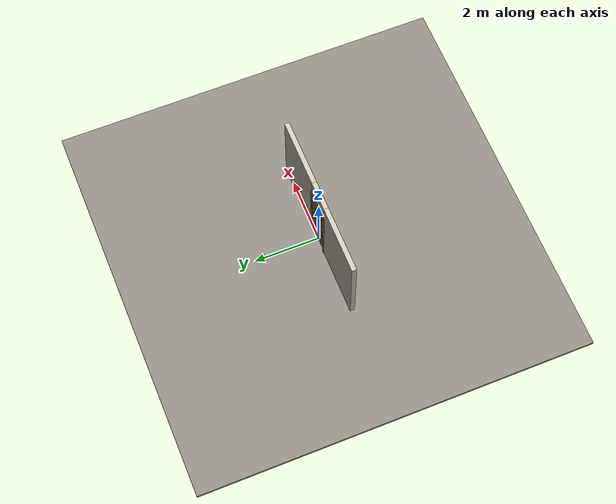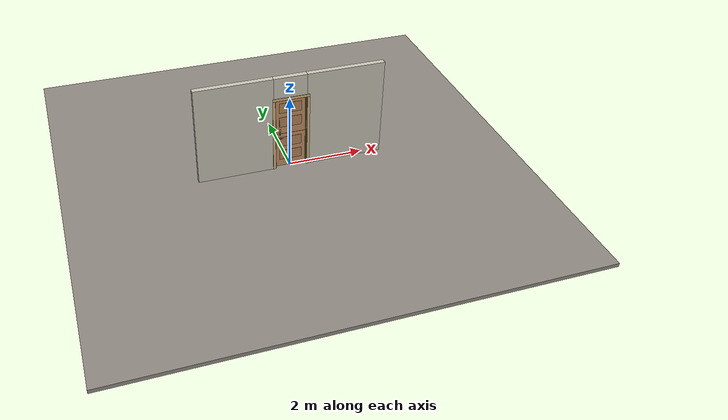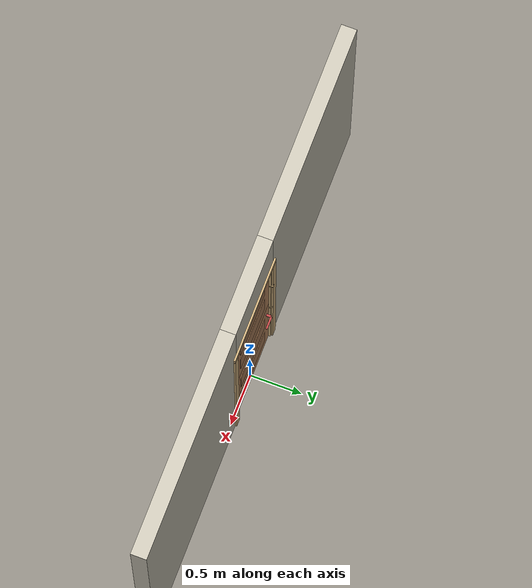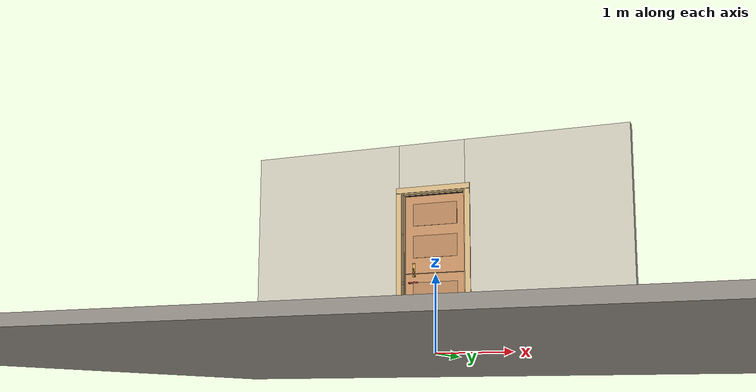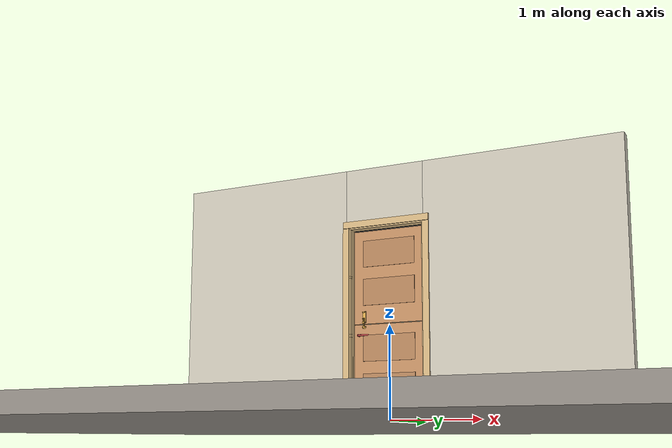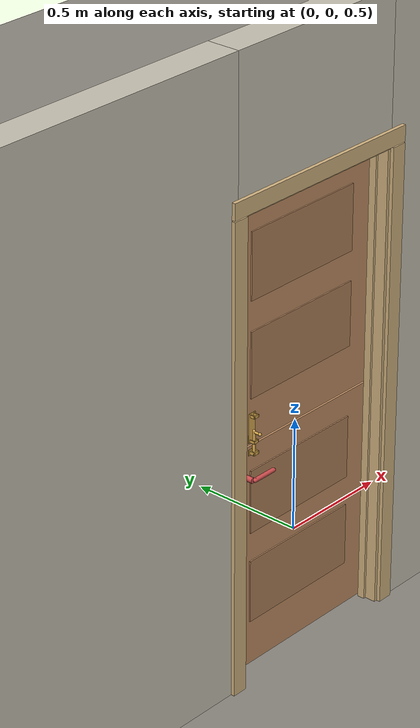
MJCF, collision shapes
<?xml version="1.0" ?>
<mujoco model="db0700_dutch_full">
  <compiler angle="radian" meshdir="../../hardware" texturedir="../../textures" autolimits="true" inertiafromgeom="false"/>
  <option timestep="0.002" integrator="implicitfast" cone="elliptic" impratio="10" noslip_iterations="3">
    <flag multiccd="enable"/>
  </option>
  <size memory="16M"/>
  <default>
    <geom condim="4" solref="0.005 1" solimp="0.95 0.99 0.001"/>
    <joint solreflimit="0.005 1" solimplimit="0.95 0.99 0.001"/>
    <tendon solreflimit="0.005 1"/>
    <equality solref="0.002 1"/>
  </default>
  <visual>
    <headlight ambient="0.4 0.4 0.4" diffuse="0.7 0.7 0.7" specular="0.2 0.2 0.2"/>
    <quality shadowsize="4096"/>
    <map znear="0.01" zfar="60"/>
  </visual>
  <asset>
    <mesh name="hinge_e22b26c0c1" file="hinge_e22b26c0c1.obj"/>
    <mesh name="hinge_jamb_e1d088f8dc" file="hinge_jamb_e1d088f8dc.obj"/>
    <mesh name="lever_9f02b544cf" file="lever_9f02b544cf.obj"/>
    <material name="mat_floor" rgba="0.55 0.53 0.5 1" specular="0.2" shininess="0.15" reflectance="0"/>
    <material name="mat_wall" rgba="0.78 0.76 0.7 1" specular="0.2" shininess="0.1" reflectance="0"/>
    <material name="mat_leaf_lower" rgba="0.75 0.55 0.38 1" specular="0.2" shininess="0.45" reflectance="0"/>
    <material name="mat_leaf_lower_panel" rgba="0.69 0.506 0.35 1" specular="0.2" shininess="0.45" reflectance="0"/>
    <material name="mat_leaf_upper" rgba="0.75 0.55 0.38 1" specular="0.2" shininess="0.45" reflectance="0"/>
    <material name="mat_leaf_upper_panel" rgba="0.69 0.506 0.35 1" specular="0.2" shininess="0.45" reflectance="0"/>
    <material name="mat_op_nickel_satin" rgba="0.72 0.7 0.66 1" specular="0.8" shininess="0.65" reflectance="0.4"/>
    <material name="mat_trim" rgba="0.85 0.66 0.3 1" specular="0.8" shininess="0.75" reflectance="0.4"/>
    <material name="mat_bolt" rgba="0.85 0.66 0.3 1" specular="0.8" shininess="0.75" reflectance="0.4"/>
    <material name="mat_joinbolt" rgba="0.85 0.66 0.3 1" specular="0.8" shininess="0.75" reflectance="0.4"/>
    <material name="mat_frame" rgba="0.82 0.7 0.5 1" specular="0.2" shininess="0.45" reflectance="0"/>
    <material name="mat_seal" rgba="0.1 0.1 0.1 1" specular="0.2" shininess="0.1" reflectance="0"/>
    <material name="mat_hinge" rgba="0.65 0.66 0.68 1" specular="0.74" shininess="0.5" reflectance="0.36"/>
    <texture name="skybox" type="skybox" builtin="gradient" rgb1="0.6 0.7 0.85" rgb2="0.9 0.92 0.95" width="256" height="256"/>
  </asset>
  <worldbody>
    <light name="sun" pos="1.5 -2.5 4" dir="-0.3 0.5 -0.8" directional="true" diffuse="0.8 0.8 0.8" specular="0.3 0.3 0.3" castshadow="true"/>
    <light name="fill" pos="-1.5 2.5 3" dir="0.3 -0.5 -0.7" directional="true" diffuse="0.35 0.35 0.4" castshadow="false"/>
    <camera name="robot_view" pos="0 -2.572687 1.734312" xyaxes="1 0 0 0 0.26963 0.962964" fovy="52"/>
    <camera name="far_view" pos="0 2.511687 1.734312" xyaxes="-1 0 0 0 -0.26963 0.962964" fovy="52"/>
    <camera name="iso" pos="-1.932062 -2.165938 2.141063" xyaxes="0.741536 -0.670913 0 0.242917 0.268487 0.932151" fovy="46"/>
    <camera name="detail_handle" pos="-0.0555 -0.877 1.176" xyaxes="0.97561 0.219512 0 -0.070934 0.315262 0.94635" fovy="38"/>
    <geom name="floor" type="box" size="6 6 0.05" pos="0 0 -0.05" material="mat_floor" group="0" contype="1" conaffinity="1" friction="0.8 0.005 0.0001" density="2400"/>
    <geom name="wall_left" type="box" size="1.02025 0.0725 1.35" pos="-1.47975 -0.0305 1.35" material="mat_wall" group="0" contype="1" conaffinity="1" friction="0.6 0.005 0.0001" density="800"/>
    <geom name="wall_right" type="box" size="1.03525 0.0725 1.35" pos="1.46475 -0.0305 1.35" material="mat_wall" group="0" contype="1" conaffinity="1" friction="0.6 0.005 0.0001" density="800"/>
    <geom name="wall_header" type="box" size="0.4445 0.0725 0.303" pos="-0.015 -0.0305 2.397" material="mat_wall" group="0" contype="1" conaffinity="1" friction="0.6 0.005 0.0001" density="800"/>
    <geom name="jamb_hinge" type="box" size="0.0095 0.0725 1.0225" pos="0.42 -0.0305 1.0225" material="mat_frame" group="0" contype="1" conaffinity="1" friction="0.6 0.005 0.0001" density="400"/>
    <geom name="strike_896_wall_n" type="box" size="0.0245 0.047575 0.0167" pos="-0.435 -0.055425 0.896" material="mat_frame" group="0" contype="1" conaffinity="1" friction="0.6 0.005 0.0001" density="400"/>
    <geom name="strike_896_wall_p" type="box" size="0.0245 0.008 0.0167" pos="-0.435 0.01585 0.896" material="mat_frame" group="0" contype="1" conaffinity="1" friction="0.6 0.005 0.0001" density="400"/>
    <geom name="strike_896_ramp" type="box" size="0.0245 0.020268 0.0167" pos="-0.440408 0.034645 0.896" quat="0.985179 0 0 0.171531" material="mat_frame" group="0" contype="1" conaffinity="1" friction="0.12 0.005 0.0001" density="400"/>
    <geom name="strike_896_back" type="box" size="0.01615 0.00785 0.0167" pos="-0.44335 0 0.896" material="mat_frame" group="0" contype="1" conaffinity="1" friction="0.6 0.005 0.0001" density="400"/>
    <geom name="strike_1524_wall_n" type="box" size="0.0245 0.04775 0.01" pos="-0.435 -0.05525 1.524" material="mat_frame" group="0" contype="1" conaffinity="1" friction="0.6 0.005 0.0001" density="400"/>
    <geom name="strike_1524_wall_p" type="box" size="0.0245 0.008 0.01" pos="-0.435 0.0155 1.524" material="mat_frame" group="0" contype="1" conaffinity="1" friction="0.6 0.005 0.0001" density="400"/>
    <geom name="strike_1524_ramp" type="box" size="0.0245 0.019412 0.01" pos="-0.437296 0.039595 1.524" quat="0.997916 0 0 0.064529" material="mat_frame" group="0" contype="1" conaffinity="1" friction="0.12 0.005 0.0001" density="400"/>
    <geom name="strike_1524_ramp_n" type="box" size="0.0245 0.019412 0.01" pos="-0.437296 -0.027595 1.524" quat="0.997916 0 0 -0.064529" material="mat_frame" group="0" contype="1" conaffinity="1" friction="0.12 0.005 0.0001" density="400"/>
    <geom name="strike_1524_back" type="box" size="0.0205 0.0075 0.01" pos="-0.439 0 1.524" material="mat_frame" group="0" contype="1" conaffinity="1" friction="0.6 0.005 0.0001" density="400"/>
    <geom name="jamb_strike_0" type="box" size="0.0245 0.0725 0.43965" pos="-0.435 -0.0305 0.43965" material="mat_frame" group="0" contype="1" conaffinity="1" friction="0.6 0.005 0.0001" density="400"/>
    <geom name="jamb_strike_1" type="box" size="0.0245 0.0725 0.30065" pos="-0.435 -0.0305 1.21335" material="mat_frame" group="0" contype="1" conaffinity="1" friction="0.6 0.005 0.0001" density="400"/>
    <geom name="jamb_strike_2" type="box" size="0.0245 0.0725 0.2555" pos="-0.435 -0.0305 1.7895" material="mat_frame" group="0" contype="1" conaffinity="1" friction="0.6 0.005 0.0001" density="400"/>
    <geom name="jamb_head" type="box" size="0.4445 0.0725 0.0095" pos="-0.015 -0.0305 2.0545" material="mat_frame" group="0" contype="1" conaffinity="1" friction="0.6 0.005 0.0001" density="400"/>
    <geom name="head_stud" type="box" size="0.4445 0.0725 0.015" pos="-0.015 -0.0305 2.079" material="mat_wall" group="0" contype="1" conaffinity="1" friction="0.6 0.005 0.0001" density="500"/>
    <geom name="stop_hinge" type="box" size="0.0055 0.016 1.0225" pos="0.405 -0.0385 1.0225" material="mat_frame" group="0" contype="1" conaffinity="1" friction="0.6 0.005 0.0001" density="400"/>
    <geom name="stop_strike" type="box" size="0.0055 0.016 1.0225" pos="-0.405 -0.0385 1.0225" material="mat_frame" group="0" contype="1" conaffinity="1" friction="0.6 0.005 0.0001" density="400"/>
    <geom name="stop_head" type="box" size="0.4105 0.016 0.0055" pos="0 -0.0385 2.0395" material="mat_frame" group="0" contype="1" conaffinity="1" friction="0.6 0.005 0.0001" density="400"/>
    <geom name="seal_hinge" type="box" size="0.004 0.003 1.0225" pos="0.4075 -0.025 1.0225" material="mat_seal" group="1" contype="0" conaffinity="0" density="1100"/>
    <geom name="seal_strike" type="box" size="0.004 0.003 1.0225" pos="-0.4075 -0.025 1.0225" material="mat_seal" group="1" contype="0" conaffinity="0" density="1100"/>
    <geom name="seal_head" type="box" size="0.3905 0.003 0.008" pos="0 -0.025 2.033" material="mat_seal" group="1" contype="0" conaffinity="0" density="1100"/>
    <geom name="casing_l_n" type="box" size="0.035 0.008 1.032" pos="-0.4595 -0.111 1.0225" material="mat_frame" group="2" contype="0" conaffinity="0" density="400"/>
    <geom name="casing_r_n" type="box" size="0.035 0.008 1.032" pos="0.4595 -0.111 1.0225" material="mat_frame" group="2" contype="0" conaffinity="0" density="400"/>
    <geom name="casing_h_n" type="box" size="0.4945 0.008 0.035" pos="0 -0.111 2.094" material="mat_frame" group="2" contype="0" conaffinity="0" density="400"/>
    <geom name="casing_l_p" type="box" size="0.035 0.008 1.032" pos="-0.4595 0.05 1.0225" material="mat_frame" group="2" contype="0" conaffinity="0" density="400"/>
    <geom name="casing_r_p" type="box" size="0.035 0.008 1.032" pos="0.4595 0.05 1.0225" material="mat_frame" group="2" contype="0" conaffinity="0" density="400"/>
    <geom name="casing_h_p" type="box" size="0.4945 0.008 0.035" pos="0 0.05 2.094" material="mat_frame" group="2" contype="0" conaffinity="0" density="400"/>
    <geom name="hinge_0_jamb" type="mesh" mesh="hinge_jamb_e1d088f8dc" pos="0.4105 0.029 0.262" quat="0 0 0 1" material="mat_hinge" group="1" contype="0" conaffinity="0" density="7850"/>
    <geom name="hinge_1_jamb" type="mesh" mesh="hinge_jamb_e1d088f8dc" pos="0.4105 0.029 0.452" quat="0 0 0 1" material="mat_hinge" group="1" contype="0" conaffinity="0" density="7850"/>
    <geom name="hinge_2_jamb" type="mesh" mesh="hinge_jamb_e1d088f8dc" pos="0.4105 0.029 0.642" quat="0 0 0 1" material="mat_hinge" group="1" contype="0" conaffinity="0" density="7850"/>
    <geom name="hinge_3_jamb" type="mesh" mesh="hinge_jamb_e1d088f8dc" pos="0.4105 0.029 0.832" quat="0 0 0 1" material="mat_hinge" group="1" contype="0" conaffinity="0" density="7850"/>
    <geom name="hinge_0_jamb_2" type="mesh" mesh="hinge_jamb_e1d088f8dc" pos="0.4105 0.029 1.27" quat="0 0 0 1" material="mat_hinge" group="1" contype="0" conaffinity="0" density="7850"/>
    <geom name="hinge_1_jamb_2" type="mesh" mesh="hinge_jamb_e1d088f8dc" pos="0.4105 0.029 1.464" quat="0 0 0 1" material="mat_hinge" group="1" contype="0" conaffinity="0" density="7850"/>
    <geom name="hinge_2_jamb_2" type="mesh" mesh="hinge_jamb_e1d088f8dc" pos="0.4105 0.029 1.658" quat="0 0 0 1" material="mat_hinge" group="1" contype="0" conaffinity="0" density="7850"/>
    <geom name="hinge_3_jamb_2" type="mesh" mesh="hinge_jamb_e1d088f8dc" pos="0.4105 0.029 1.852" quat="0 0 0 1" material="mat_hinge" group="1" contype="0" conaffinity="0" density="7850"/>
    <site name="approach_point" pos="0 -1.5 0" quat="1 0 0 0" size="0.05" rgba="0.2 0.9 0.2 0.5" group="4"/>
    <site name="goal_point" pos="0 1.5 0" quat="1 0 0 0" size="0.05" rgba="0.2 0.9 0.2 0.5" group="4"/>
    <site name="door_plane_center" pos="0 0 1.0225" quat="1 0 0 0" size="0.02" rgba="0.2 0.9 0.2 0.5" group="4"/>
    <body name="leaf_lower" pos="0.4105 0 0">
      <inertial pos="-0.063499 0.014124 0.574667" mass="18.911392" quat="-0.354711 0.319121 0.629431 0.613317" diaginertia="0.5255937 1.285840631 1.801865146"/>
      <joint name="leaf_lower_hinge" type="hinge" axis="0 0 -1" pos="-0.003 0.029 0" limited="true" range="0 1.745329" solreflimit="0.02 1" damping="0.210326" frictionloss="0.704303" armature="0.02"/>
      <geom name="leaf_lower_slab" type="box" size="0.4065 0.022 0.5" pos="-0.4095 0 0.512" material="mat_leaf_lower" group="0" contype="1" conaffinity="1" friction="0.35 0.005 0.0001" density="1"/>
      <geom name="leaf_lower_panel_0_n" type="box" size="0.2965 0.003 0.14" pos="-0.4095 -0.025 0.352" material="mat_leaf_lower_panel" group="1" contype="0" conaffinity="0" density="1"/>
      <geom name="leaf_lower_panel_0_p" type="box" size="0.2965 0.003 0.14" pos="-0.4095 0.025 0.352" material="mat_leaf_lower_panel" group="1" contype="0" conaffinity="0" density="1"/>
      <geom name="leaf_lower_panel_1_n" type="box" size="0.2965 0.003 0.14" pos="-0.4095 -0.025 0.762" material="mat_leaf_lower_panel" group="1" contype="0" conaffinity="0" density="1"/>
      <geom name="leaf_lower_panel_1_p" type="box" size="0.2965 0.003 0.14" pos="-0.4095 0.025 0.762" material="mat_leaf_lower_panel" group="1" contype="0" conaffinity="0" density="1"/>
      <geom name="lower_latch_bolt_faceplate" type="box" size="0.0006 0.01235 0.0267" pos="-0.8154 0 0.896" material="mat_bolt" group="1" contype="0" conaffinity="0" density="8500"/>
      <geom name="join_keeper_leg_n" type="box" size="0.007 0.0025 0.013" pos="-0.7075 -0.035 0.986" quat="-0.5 -0.5 -0.5 0.5" material="mat_joinbolt" group="0" contype="1" conaffinity="1" friction="0.6 0.005 0.0001" density="7800"/>
      <geom name="join_keeper_leg_p" type="box" size="0.007 0.0025 0.013" pos="-0.6845 -0.035 0.986" quat="-0.5 -0.5 -0.5 0.5" material="mat_joinbolt" group="0" contype="1" conaffinity="1" friction="0.6 0.005 0.0001" density="7800"/>
      <geom name="join_keeper_bridge" type="box" size="0.007 0.014 0.0025" pos="-0.696 -0.0455 0.986" quat="-0.5 -0.5 -0.5 0.5" material="mat_joinbolt" group="0" contype="1" conaffinity="1" friction="0.6 0.005 0.0001" density="7800"/>
      <geom name="join_keeper_base" type="box" size="0.013 0.02 0.001" pos="-0.696 -0.023 0.986" quat="-0.5 -0.5 -0.5 0.5" material="mat_joinbolt" group="1" contype="0" conaffinity="0" density="7800"/>
      <geom name="hinge_0" type="mesh" mesh="hinge_e22b26c0c1" pos="0 0.029 0.262" quat="0 0 0 1" material="mat_hinge" group="1" contype="0" conaffinity="0" density="7850"/>
      <geom name="hinge_1" type="mesh" mesh="hinge_e22b26c0c1" pos="0 0.029 0.452" quat="0 0 0 1" material="mat_hinge" group="1" contype="0" conaffinity="0" density="7850"/>
      <geom name="hinge_2" type="mesh" mesh="hinge_e22b26c0c1" pos="0 0.029 0.642" quat="0 0 0 1" material="mat_hinge" group="1" contype="0" conaffinity="0" density="7850"/>
      <geom name="hinge_3" type="mesh" mesh="hinge_e22b26c0c1" pos="0 0.029 0.832" quat="0 0 0 1" material="mat_hinge" group="1" contype="0" conaffinity="0" density="7850"/>
      <body name="lower_handle" pos="-0.746 0 0.896">
        <inertial pos="0.028544 0 0" mass="0.978187" quat="0 0.707107 0.707107 0" diaginertia="0.001772047 0.003604455 0.005198299"/>
        <joint name="lower_handle_hinge" type="hinge" axis="0 1 0" limited="true" range="0 0.96" damping="0.245624" frictionloss="0.048" stiffness="1.2" springref="-0.458333" armature="0.01"/>
        <geom name="lower_handle_spindle" type="cylinder" size="0.006 0.03" pos="0 0 0" quat="0.707107 -0.707107 0 0" material="mat_op_nickel_satin" group="1" contype="0" conaffinity="0" density="7850"/>
        <geom name="lower_handle_lever_n" type="mesh" mesh="lever_9f02b544cf" pos="0 -0.022 0" quat="0 0 -0.707107 0.707107" material="mat_op_nickel_satin" group="1" contype="0" conaffinity="0" density="3000"/>
        <geom name="lower_handle_lever_col_n" type="capsule" size="0.0095 0.053" pos="0.0625 -0.077 0" quat="0.707107 0 0.707107 0" material="mat_op_nickel_satin" group="3" contype="1" conaffinity="1" rgba="0.8 0.3 0.3 0.25" friction="0.7 0.01 0.0001" density="3000"/>
        <geom name="lower_handle_hub_col_n" type="cylinder" size="0.012 0.022" pos="0 -0.052 0" quat="0.707107 -0.707107 0 0" material="mat_op_nickel_satin" group="3" contype="1" conaffinity="1" rgba="0.8 0.3 0.3 0.25" friction="0.6 0.005 0.0001" density="3000"/>
        <geom name="lower_handle_lever_p" type="mesh" mesh="lever_9f02b544cf" pos="0 0.022 0" quat="0 0 0.707107 0.707107" material="mat_op_nickel_satin" group="1" contype="0" conaffinity="0" density="3000"/>
        <geom name="lower_handle_lever_col_p" type="capsule" size="0.0095 0.053" pos="0.0625 0.077 0" quat="0.707107 0 0.707107 0" material="mat_op_nickel_satin" group="3" contype="1" conaffinity="1" rgba="0.8 0.3 0.3 0.25" friction="0.7 0.01 0.0001" density="3000"/>
        <geom name="lower_handle_hub_col_p" type="cylinder" size="0.012 0.022" pos="0 0.052 0" quat="0.707107 -0.707107 0 0" material="mat_op_nickel_satin" group="3" contype="1" conaffinity="1" rgba="0.8 0.3 0.3 0.25" friction="0.6 0.005 0.0001" density="3000"/>
        <site name="lower_handle_grip_n" pos="0.1 -0.077 0" quat="1 0 0 0" size="0.012" rgba="0.2 0.9 0.2 0.5" group="4"/>
        <site name="lower_handle_grip_p" pos="0.1 0.077 0" quat="1 0 0 0" size="0.012" rgba="0.2 0.9 0.2 0.5" group="4"/>
      </body>
      <body name="lower_latch_bolt" pos="-0.816 0 0.896">
        <inertial pos="0.00865 0 0" mass="0.041419" quat="0.92388 0.382683 0 0" diaginertia="0.000000798 0.000005598 0.000005598"/>
        <joint name="lower_latch_bolt_slide" type="slide" axis="1 0 0" limited="true" range="0 0.0127" damping="2" frictionloss="0.3" stiffness="300" springref="-0.008333" armature="0.1"/>
        <geom name="lower_latch_bolt_capsule" type="capsule" size="0.00635 0.015" pos="0.00865 0 0" quat="0.707107 0 -0.707107 0" material="mat_bolt" group="0" contype="1" conaffinity="1" friction="0.2 0.005 0.0001" density="8500"/>
      </body>
    </body>
    <body name="leaf_upper" pos="0.4105 0 0">
      <inertial pos="-0.101473 0.01165 1.505228" mass="19.159617" quat="0.305768 0.267254 0.652486 -0.639799" diaginertia="0.571726064 1.841039317 2.40370815"/>
      <joint name="leaf_upper_hinge" type="hinge" axis="0 0 -1" pos="-0.003 0.029 0" limited="true" range="0 1.745329" solreflimit="0.02 1" damping="0.210326" frictionloss="0.704303" armature="0.02"/>
      <geom name="leaf_upper_slab" type="box" size="0.4065 0.022 0.506" pos="-0.4095 0 1.526" material="mat_leaf_upper" group="0" contype="1" conaffinity="1" friction="0.35 0.005 0.0001" density="1"/>
      <geom name="leaf_upper_panel_0_n" type="box" size="0.2965 0.003 0.143" pos="-0.4095 -0.025 1.363" material="mat_leaf_upper_panel" group="1" contype="0" conaffinity="0" density="1"/>
      <geom name="leaf_upper_panel_0_p" type="box" size="0.2965 0.003 0.143" pos="-0.4095 0.025 1.363" material="mat_leaf_upper_panel" group="1" contype="0" conaffinity="0" density="1"/>
      <geom name="leaf_upper_panel_1_n" type="box" size="0.2965 0.003 0.143" pos="-0.4095 -0.025 1.779" material="mat_leaf_upper_panel" group="1" contype="0" conaffinity="0" density="1"/>
      <geom name="leaf_upper_panel_1_p" type="box" size="0.2965 0.003 0.143" pos="-0.4095 0.025 1.779" material="mat_leaf_upper_panel" group="1" contype="0" conaffinity="0" density="1"/>
      <geom name="upper_catch_faceplate" type="box" size="0.0006 0.012 0.02" pos="-0.8154 0 1.524" material="mat_bolt" group="1" contype="0" conaffinity="0" density="8500"/>
      <geom name="join_bolt_plate" type="box" size="0.064 0.019 0.001" pos="-0.696 -0.023 1.092" quat="-0.5 -0.5 -0.5 0.5" material="mat_joinbolt" group="1" contype="0" conaffinity="0" density="7800"/>
      <geom name="join_bolt_guide_0_leg_n" type="box" size="0.006 0.002 0.0125" pos="-0.707 -0.0345 1.036" quat="-0.5 -0.5 -0.5 0.5" material="mat_joinbolt" group="1" contype="0" conaffinity="0" density="7800"/>
      <geom name="join_bolt_guide_0_leg_p" type="box" size="0.006 0.002 0.0125" pos="-0.685 -0.0345 1.036" quat="-0.5 -0.5 -0.5 0.5" material="mat_joinbolt" group="1" contype="0" conaffinity="0" density="7800"/>
      <geom name="join_bolt_guide_0_bridge" type="box" size="0.006 0.013 0.002" pos="-0.696 -0.045 1.036" quat="-0.5 -0.5 -0.5 0.5" material="mat_joinbolt" group="1" contype="0" conaffinity="0" density="7800"/>
      <geom name="join_bolt_guide_1_leg_n" type="box" size="0.006 0.002 0.0125" pos="-0.707 -0.0345 1.146" quat="-0.5 -0.5 -0.5 0.5" material="mat_joinbolt" group="1" contype="0" conaffinity="0" density="7800"/>
      <geom name="join_bolt_guide_1_leg_p" type="box" size="0.006 0.002 0.0125" pos="-0.685 -0.0345 1.146" quat="-0.5 -0.5 -0.5 0.5" material="mat_joinbolt" group="1" contype="0" conaffinity="0" density="7800"/>
      <geom name="join_bolt_guide_1_bridge" type="box" size="0.006 0.013 0.002" pos="-0.696 -0.045 1.146" quat="-0.5 -0.5 -0.5 0.5" material="mat_joinbolt" group="1" contype="0" conaffinity="0" density="7800"/>
      <geom name="hinge_0_2" type="mesh" mesh="hinge_e22b26c0c1" pos="0 0.029 1.27" quat="0 0 0 1" material="mat_hinge" group="1" contype="0" conaffinity="0" density="7850"/>
      <geom name="hinge_1_2" type="mesh" mesh="hinge_e22b26c0c1" pos="0 0.029 1.464" quat="0 0 0 1" material="mat_hinge" group="1" contype="0" conaffinity="0" density="7850"/>
      <geom name="hinge_2_2" type="mesh" mesh="hinge_e22b26c0c1" pos="0 0.029 1.658" quat="0 0 0 1" material="mat_hinge" group="1" contype="0" conaffinity="0" density="7850"/>
      <geom name="hinge_3_2" type="mesh" mesh="hinge_e22b26c0c1" pos="0 0.029 1.852" quat="0 0 0 1" material="mat_hinge" group="1" contype="0" conaffinity="0" density="7850"/>
      <body name="upper_catch" pos="-0.816 0 1.524">
        <inertial pos="0.013 0 0" mass="0.02884" quat="0 0 -0.707107 0.707107" diaginertia="0.000000491 0.000002465 0.000002465"/>
        <joint name="upper_catch_slide" type="slide" axis="1 0 0" limited="true" range="0 0.004" damping="2" frictionloss="0.3" stiffness="4000" springref="-0.00375" armature="0.1"/>
        <geom name="upper_catch_capsule" type="capsule" size="0.006 0.011" pos="0.013 0 0" quat="0.707107 0 -0.707107 0" material="mat_bolt" group="0" contype="1" conaffinity="1" friction="0.2 0.005 0.0001" density="8500"/>
      </body>
      <body name="join_bolt" pos="-0.696 -0.034 1.02">
        <inertial pos="0 -0.00492 0.025264" mass="0.111784" quat="-0.065075 0.704106 -0.065075 0.704106" diaginertia="0.000009833 0.000100603 0.000108548"/>
        <joint name="join_bolt_slide" type="slide" axis="0 0 1" limited="true" range="0 0.05" damping="1" frictionloss="1" armature="0.1"/>
        <geom name="join_bolt_rod" type="capsule" size="0.006 0.044" pos="0 0 0.016" quat="0 1 0 0" material="mat_joinbolt" group="0" contype="1" conaffinity="1" friction="0.6 0.005 0.0001" density="7850"/>
        <geom name="join_bolt_knob" type="capsule" size="0.005 0.01" pos="0 -0.015 0.055" quat="0.707107 0.707107 0 0" material="mat_joinbolt" group="0" contype="1" conaffinity="1" friction="0.6 0.005 0.0001" density="7850"/>
        <geom name="join_bolt_knob_end" type="sphere" size="0.00675" pos="0 -0.03 0.055" material="mat_joinbolt" group="1" contype="0" conaffinity="0" density="7850"/>
        <site name="join_bolt_grip" pos="0 -0.034 0.055" quat="1 0 0 0" size="0.012" rgba="0.2 0.9 0.2 0.5" group="4"/>
      </body>
    </body>
  </worldbody>
  <tendon>
    <fixed name="lower_latch_bolt_coupling" limited="true" range="0 10">
      <joint joint="lower_latch_bolt_slide" coef="1"/>
      <joint joint="lower_handle_hinge" coef="-0.013956"/>
    </fixed>
  </tendon>
  <sensor>
    <jointpos name="leaf_lower_hinge_pos" joint="leaf_lower_hinge"/>
    <jointvel name="leaf_lower_hinge_vel" joint="leaf_lower_hinge"/>
    <jointpos name="leaf_upper_hinge_pos" joint="leaf_upper_hinge"/>
    <jointvel name="leaf_upper_hinge_vel" joint="leaf_upper_hinge"/>
    <jointpos name="lower_handle_hinge_pos" joint="lower_handle_hinge"/>
    <jointvel name="lower_handle_hinge_vel" joint="lower_handle_hinge"/>
    <jointpos name="lower_latch_bolt_slide_pos" joint="lower_latch_bolt_slide"/>
    <jointvel name="lower_latch_bolt_slide_vel" joint="lower_latch_bolt_slide"/>
    <jointpos name="upper_catch_slide_pos" joint="upper_catch_slide"/>
    <jointvel name="upper_catch_slide_vel" joint="upper_catch_slide"/>
    <jointpos name="join_bolt_slide_pos" joint="join_bolt_slide"/>
    <jointvel name="join_bolt_slide_vel" joint="join_bolt_slide"/>
  </sensor>
</mujoco>
